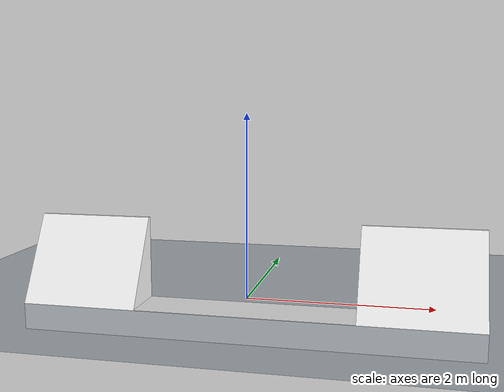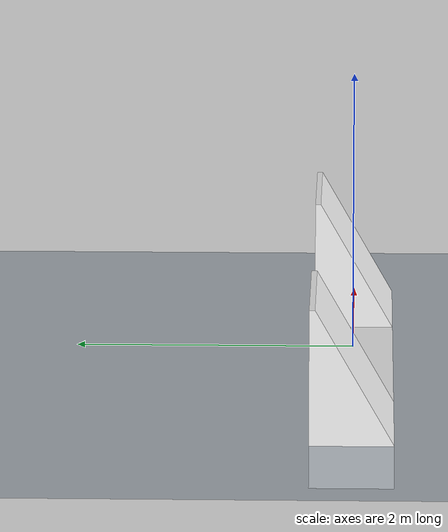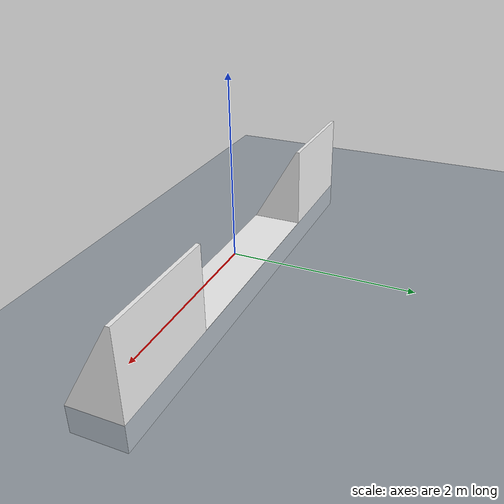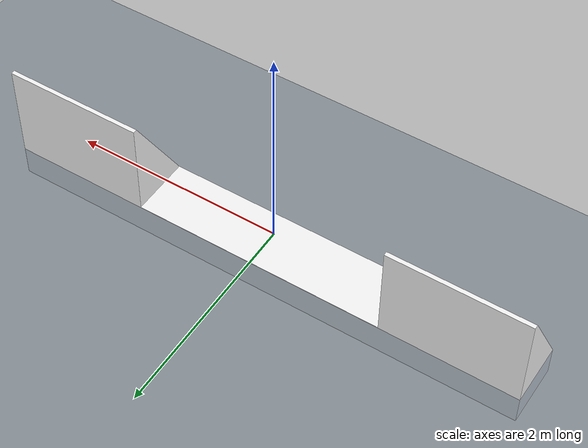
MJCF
<mujoco>
    <compiler autolimits="true" angle="radian"
              meshdir="../../model/fruitfly_v1"/>
    <option timestep="0.0001" gravity="0 0 -981" density="0.00128" viscosity="0.000185" cone="elliptic" noslip_iterations="3"/>
    <size njmax="300" nconmax="100" nkey="1"/>

    <asset>
        <texture name="grid" type="2d" builtin="checker" rgb1=".1 .2 .3" rgb2=".2 .3 .4" width="300" height="300" mark="edge" markrgb=".2 .3 .4" />
        <material name="grid" texture="grid" texrepeat="1 1" texuniform="true" reflectance=".2" />
        <texture name="skybox" type="skybox" builtin="gradient" rgb1=".4 .6 .8" rgb2="0 0 0" width="100" height="100" />
        <mesh name="Happy_house" file="assets/Happy_house.obj" scale="10 10 10"/>
        <material name="happy_house_mat" specular="0.5" shininess="1.0" reflectance="0.0" rgba="0.9607840180397034 0.9607840180397034 0.9607840180397034 1.0"/>
    </asset>

    <visual>
        <global offwidth="3840" offheight="2160"/>
        <quality shadowsize="8192" offsamples="24"/>
        <headlight ambient="0.4 0.4 0.4" diffuse="0.8 0.8 0.8" specular="0.1 0.1 0.1"/>
        <map stiffness="1e+04" stiffnessrot="5e+04" force="2e-05"/>
        <scale jointlength="1.2" jointwidth="0.07" framelength="1" framewidth="0.03"/>
    </visual>
    <statistic meansize="0.02"/>
    <worldbody>
        <geom name="floor" type="plane" size="5 5 .1" material="grid" pos="0 0 -.1251"/>
        <!-- contype/conaffinity 0: scenery for the render, never a collision
             surface. These are replayed IK poses, not a simulation. -->
        <geom name="Happy_house" mesh="Happy_house" size="10" pos="0.0 0.0 -0.125" quat="1.0 0.0 0.0 0.0" type="mesh" material="happy_house_mat" contype="0" conaffinity="0"/>
    </worldbody>

</mujoco>
